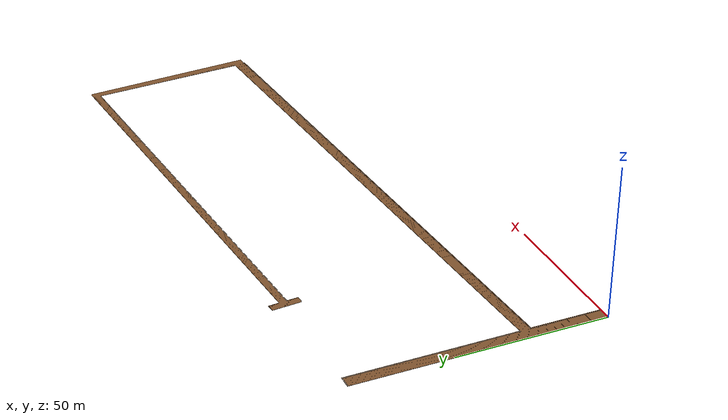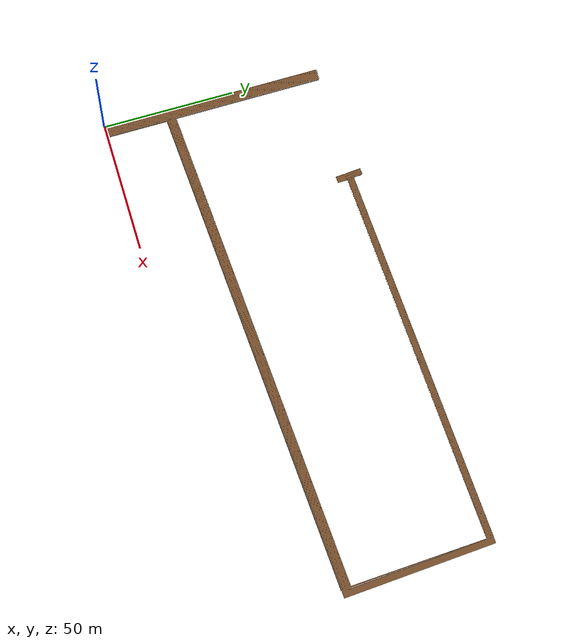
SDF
<?xml version='1.0'?>
<sdf version='1.7'>
  <model name='Marina_dokovi'>
    <link name='link'>
      <self_collide>0</self_collide>
      <gravity>1</gravity>
      <inertial>
        <mass>100000</mass>
        <pose>0 0 0 0 -0 0</pose>
        <inertia>
          <ixx>0</ixx>
          <ixy>0</ixy>
          <ixz>0</ixz>
          <iyy>0</iyy>
          <iyz>0</iyz>
          <izz>0</izz>
        </inertia>
      </inertial>
      <enable_wind>0</enable_wind>
      <kinematic>0</kinematic>
      <pose>0 0 0 0 -0 0</pose>
      <visual name='visual'>
        <pose>0 0 0 0 -0 0</pose>
        <geometry>
          <mesh>
            <uri>/home/albert/marinero_ws/src/marinero_simulations/models/Marina_dokovi/meshes/Marina_bez_razmaka_1m.dae</uri>
            <scale>1 1 1</scale>
          </mesh>
        </geometry>
        <material>
          <script>
            <uri>file://media/materials/scripts/gazebo.material</uri>
            <name>Gazebo/Brown</name>
          </script>
          <ambient>0.278 0.129 0.02 1</ambient>
          <diffuse>0.278 0.129 0.02 1</diffuse>
          <specular>0.278 0.129 0.02 1</specular>
          <emissive>0 0 0 1</emissive>
          <shader type='pixel'>
            <normal_map>__default__</normal_map>
          </shader>
        </material>
        <transparency>0</transparency>
        <cast_shadows>1</cast_shadows>
      </visual>
      <collision name='collision'>
        <laser_retro>0</laser_retro>
        <max_contacts>10</max_contacts>
        <pose>0 0 0 0 -0 0</pose>
        <geometry>
          <mesh>
            <uri>/home/albert/marinero_ws/src/marinero_simulations/models/Marina_dokovi/meshes/Marina_bez_razmaka_1m.dae</uri>
            <scale>1 1 1</scale>
          </mesh>
        </geometry>
        <surface>
          <friction>
            <ode>
              <mu>0.9</mu>
              <mu2>0.9</mu2>
              <fdir1>0 0 0</fdir1>
              <slip1>0.001</slip1>
              <slip2>1e-05</slip2>
            </ode>
            <torsional>
              <coefficient>1</coefficient>
              <patch_radius>0</patch_radius>
              <surface_radius>0</surface_radius>
              <use_patch_radius>1</use_patch_radius>
              <ode>
                <slip>0</slip>
              </ode>
            </torsional>
          </friction>
          <bounce>
            <restitution_coefficient>0</restitution_coefficient>
            <threshold>1000</threshold>
          </bounce>
          <contact>
            <collide_without_contact>0</collide_without_contact>
            <collide_without_contact_bitmask>0</collide_without_contact_bitmask>
            <collide_bitmask>1</collide_bitmask>
            <ode>
              <soft_cfm>0</soft_cfm>
              <soft_erp>0.2</soft_erp>
              <kp>1e+11</kp>
              <kd>100</kd>
              <max_vel>10</max_vel>
              <min_depth>0.001</min_depth>
            </ode>
            <bullet>
              <split_impulse>1</split_impulse>
              <split_impulse_penetration_threshold>-0.01</split_impulse_penetration_threshold>
              <soft_cfm>0</soft_cfm>
              <soft_erp>0.2</soft_erp>
              <kp>1e+11</kp>
              <kd>100</kd>
            </bullet>
          </contact>
        </surface>
      </collision>
    </link>
    <static>1</static>
    <allow_auto_disable>1</allow_auto_disable>
  </model>
</sdf>
